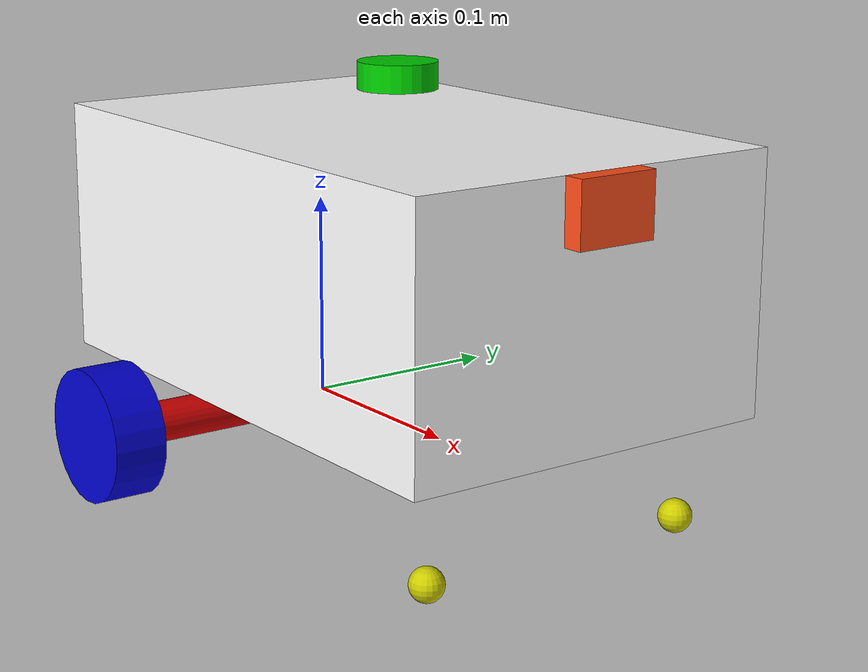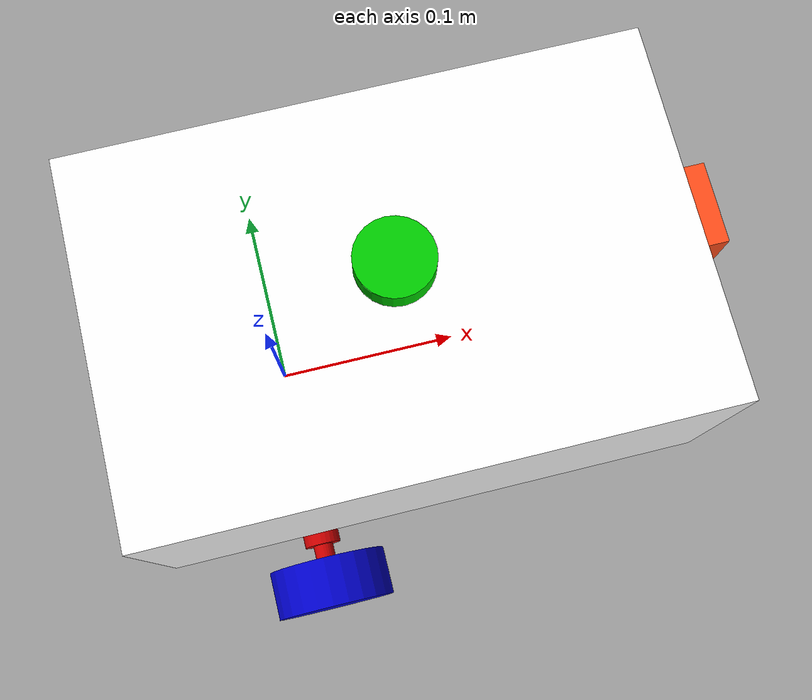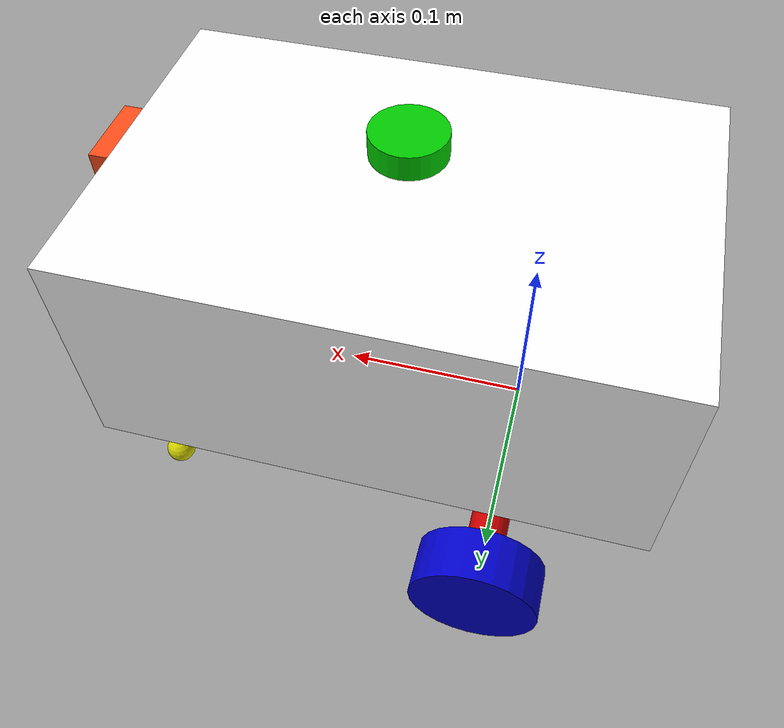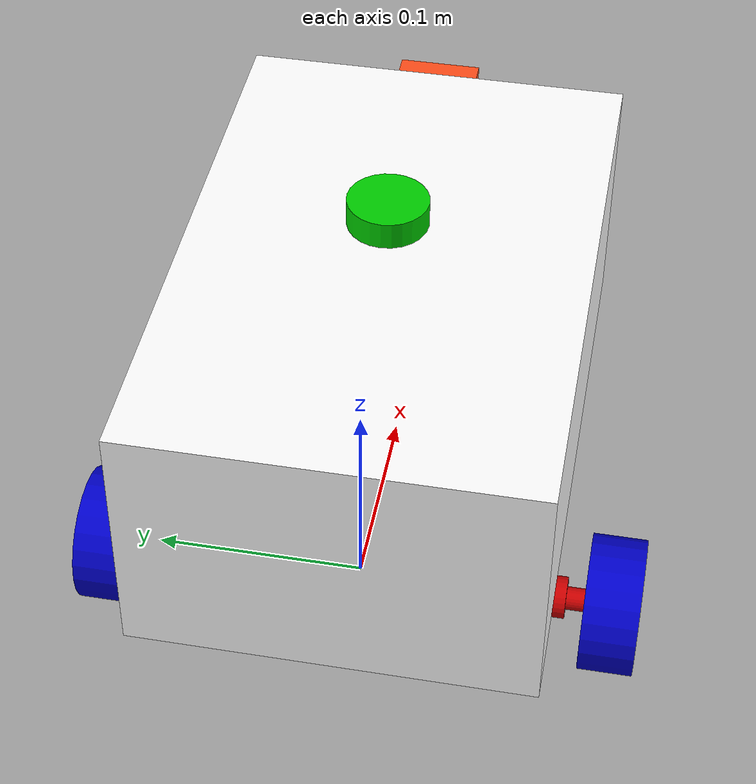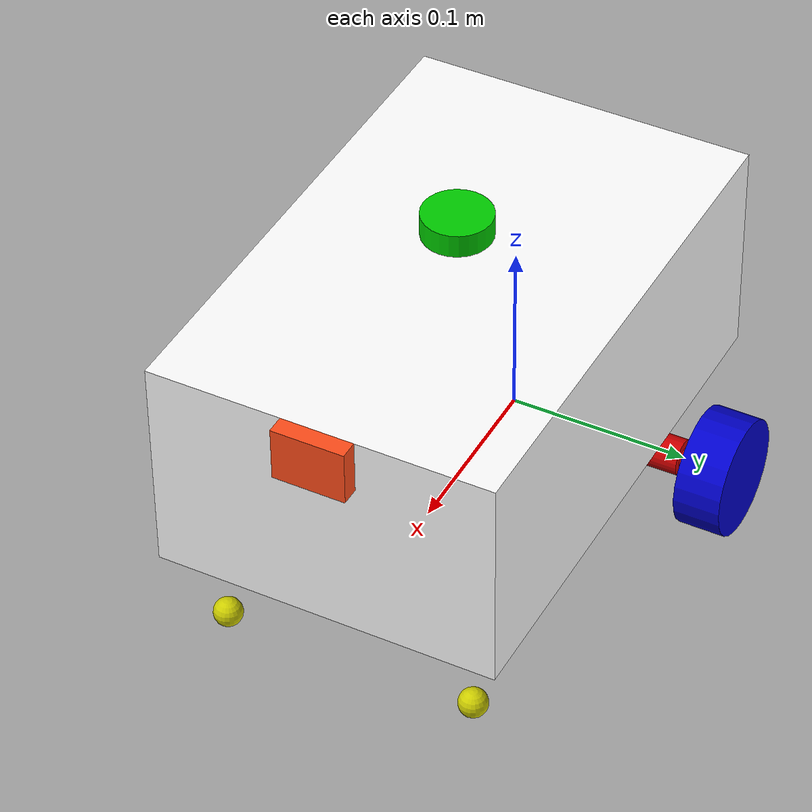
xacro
<?xml version="1.0"?>
<robot xmlns:xacro="http://www.ros.org/wiki/xacro"  name="manolobot_uno">

    <xacro:arg name="use_ros2_control" default="true" />

    <!-- PROPERTIES -->
    <xacro:include filename="properties.xacro" />

    <!-- CORE ROBOT DESCRIPTION -->
    <xacro:include filename="robot_core.xacro" />

    <!-- toggle between ROS2 CONTROL -->
    <xacro:if value ="$(arg use_ros2_control)">
        <xacro:include filename="ros2_control.xacro" />
    </xacro:if>

    <!-- and GAZEBO -->
    <xacro:unless value ="$(arg use_ros2_control)">
        <xacro:include filename="gazebo_control.xacro" />
    </xacro:unless>

    <!-- LIDAR -->
    <xacro:include filename="lidar.xacro" />

    <!-- CAMERA -->
    <xacro:include filename="camera.xacro" />

</robot>

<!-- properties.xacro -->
<robot xmlns:xacro="http://www.ros.org/wiki/xacro" >

    <!-- box -->
    <xacro:property name="box_x" value="0.29"/> <!-- box length -->
    <xacro:property name="box_y" value="0.19"/> <!-- box width -->
    <xacro:property name="box_z" value="0.124"/> <!-- box height -->
    <xacro:property name="box_mass" value="0.05"/> <!-- box mass -->

    <!-- wheels -->
    <xacro:property name="W_x" value="0.066"/> <!-- wheel axis x-offset from centre -->
    <xacro:property name="W_z" value="0.022"/> <!-- wheel axis z-offset from bottom -->
    <xacro:property name="W_y" value="0.122"/> <!-- wheel half separation -->
    <xacro:property name="W_D" value="0.065"/> <!-- wheel diameter -->
    <xacro:property name="W_h" value="0.026"/> <!-- wheel width -->
    <xacro:property name="W_mass" value="0.05"/> <!-- wheel mass -->

    <!-- casters -->
    <xacro:property name="c_x" value="0.024"/> <!-- caster centre x-offset from edge -->
    <xacro:property name="c_y" value="0.024"/> <!-- caster centre y-offset from edge -->
    <xacro:property name="c_z" value="0.049"/> <!-- caster contact z-offset from bottom -->
    <xacro:property name="c_D" value="0.016"/> <!-- caster diameter -->
    <xacro:property name="c_mass" value="0.05"/> <!-- caster mass -->

    <!-- motors -->
    <xacro:property name="m_y" value="0.04"/> <!-- motor y-offset from centre-->
    <xacro:property name="m_h" value="0.06"/> <!-- motor length -->
    <xacro:property name="m_D" value="0.02"/> <!-- motor body diameter -->
    <xacro:property name="m_l" value="0.009"/> <!-- motor coupling length -->
    <xacro:property name="m_d" value="0.011"/> <!-- motor coupling diameter -->
    <xacro:property name="m_mass" value="0.05"/> <!-- motor mass -->

    <!--lidar -->
    <xacro:property name="L_x" value="0.0"/> <!-- Lidar x-offset from box centre -->
    <xacro:property name="L_z" value="0.023"/> <!-- Lidar z-offset from box top -->
    <xacro:property name="L_D" value="0.038"/> <!-- Lidar head diameter -->
    <xacro:property name="L_h" value="0.013"/> <!-- Lidar unit height -->
    <xacro:property name="L_mass" value="0.0042"/> <!-- Lidar mass -->

    <!--camera -->
    <xacro:property name="cam_x" value="0.0"/> <!-- Camera x-offset from box front face -->
    <xacro:property name="cam_z" value="-0.03"/> <!-- Lidar z-offset from box top -->
    <xacro:property name="cam_dx" value="0.01"/> <!-- Camera box thickness -->
    <xacro:property name="cam_dy" value="0.04"/> <!-- Camera box width -->
    <xacro:property name="cam_dz" value="0.03"/> <!-- Camera box height -->
    <xacro:property name="cam_mass" value="0.002"/> <!-- Camera mass -->

</robot>

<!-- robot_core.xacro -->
<robot xmlns:xacro="http://www.ros.org/wiki/xacro" >

    <!-- MATERIALS -->
    <!-- white black light_gray dark_gray green blue red yellow orange -->

    <xacro:include filename="materials.xacro" />

    <!-- INERTIAL MACROS -->

    <xacro:include filename="inertial_macros.xacro" />

    <!-- BASE LINK -->

    <link name="base_link">
    </link>

    <!-- CHASSIS LINK -->

    <joint name="chassis_joint" type = "fixed">
        <parent link="base_link" />
        <child link="chassis_link" />
        <origin xyz="${W_x-box_x/2} 0 ${W_z}" />
    </joint>

    <link name="chassis_link">
        <visual>
            <geometry>
                <box size="${box_x} ${box_y} ${box_z}"/>
            </geometry>
            <origin xyz="${box_x/2} 0 ${box_z/2}" />
            <material name="white" />
        </visual>

        <collision>
            <geometry>
                <box size="${box_x} ${box_y} ${box_z}"/>
            </geometry>
            <origin xyz="${box_x/2} 0 ${box_z/2}" />
        </collision>

        <xacro:inertial_box mass="${box_mass}" x="${box_x}" y="${box_y}" z="${box_z}">
            <origin xyz="${box_x/2} 0 ${box_z/2}" rpy="0 0 0" />
        </xacro:inertial_box>

    </link>

    <gazebo reference="chassis_link">
        <material>Gazebo/White</material>
    </gazebo>

    <!-- LEFT WHEEL LINK -->

    <joint name="left_wheel_joint" type = "continuous">
        <parent link="base_link" />
        <child link="left_wheel_link" />
        <origin xyz="0 ${W_y} 0" rpy="-${pi/2} 0 0" />
        <axis xyz="0 0 1" />
    </joint>

    <link name="left_wheel_link">
        <visual>
            <geometry>
                <cylinder radius="${W_D/2}" length="${W_h}" />
            </geometry>
            <material name="blue" />
        </visual>

        <collision>
            <geometry>
                <sphere radius="${W_D/2}" />
            </geometry>
        </collision>

        <xacro:inertial_cylinder mass="${W_mass}" radius="${W_D/2}" length="${W_h}">
            <origin xyz="0 0 0" rpy="0 0 0" />
        </xacro:inertial_cylinder>

    </link>

    <gazebo reference="left_wheel_link">
        <material>Gazebo/Blue</material>
    </gazebo>

    <!-- RIGHT WHEEL LINK -->

    <joint name="right_wheel_joint" type = "continuous">
        <parent link="base_link" />
        <child link="right_wheel_link" />
        <origin xyz="0 -${W_y} 0" rpy="${pi/2} 0 0" />
        <axis xyz="0 0 -1" />
    </joint>

    <link name="right_wheel_link">
        <visual>
            <geometry>
                <cylinder radius="${W_D/2}" length="${W_h}" />
            </geometry>
            <material name="blue" />
        </visual>

        <collision>
            <geometry>
                <sphere radius="${W_D/2}" />
            </geometry>
        </collision>

        <xacro:inertial_cylinder mass="${W_mass}" radius="${W_D/2}" length="${W_h}">
            <origin xyz="0 0 0" rpy="0 0 0" />
        </xacro:inertial_cylinder>

    </link>

    <gazebo reference="right_wheel_link">
        <material>Gazebo/Blue</material>
    </gazebo>

<!-- LEFT CASTER WHEEL LINK -->

    <joint name="left_caster_wheel_joint" type = "fixed">
        <parent link="chassis_link" />
        <child link="left_caster_wheel_link" />
        <origin xyz="${box_x-c_x} ${box_y/2-c_y} ${-c_z}" />
    </joint>

    <link name="left_caster_wheel_link">
        <visual>
            <geometry>
                <sphere radius="${c_D/2}" />
            </geometry>
            <material name="yellow" />
        </visual>

        <collision>
            <geometry>
                <sphere radius="${c_D/2}" />
            </geometry>
        </collision>

        <xacro:inertial_sphere mass="${c_mass}" radius="${c_D/2}">
            <origin xyz="0 0 0" rpy="0 0 0" />
        </xacro:inertial_sphere>

    </link>

    <gazebo reference="left_caster_wheel_link">
        <material>Gazebo/Yellow</material>
        <mu1 value="0.0001" />
        <mu2 value="0.0001" />
    </gazebo>

<!-- RIGHT CASTER WHEEL LINK     -->

    <joint name="right_caster_wheel_joint" type = "fixed">
        <parent link="chassis_link" />
        <child link="right_caster_wheel_link" />
        <origin xyz="${box_x-c_x} ${-box_y/2+c_y} ${-c_z}" />
    </joint>

    <link name="right_caster_wheel_link">
        <visual>
            <geometry>
                <sphere radius="${c_D/2}" />
            </geometry>
            <material name="yellow" />
        </visual>

        <collision>
            <geometry>
                <sphere radius="${c_D/2}" />
            </geometry>
        </collision>

        <xacro:inertial_sphere mass="${c_mass}" radius="${c_D/2}">
            <origin xyz="0 0 0" rpy="0 0 0" />
        </xacro:inertial_sphere>

    </link>

    <gazebo reference="right_caster_wheel_link">
        <material>Gazebo/Yellow</material>
        <mu1 value="0.0001" />
        <mu2 value="0.0001" />
    </gazebo>

    <!-- LEFT MOTOR LINK -->

    <joint name="left_motor_joint" type = "fixed">
        <parent link="base_link" />
        <child link="left_motor_link" />
        <origin xyz="0 ${m_y+m_h/2} 0" rpy="-${pi/2} 0 0" />
    </joint>

    <link name="left_motor_link">
        <visual>
            <geometry>
                <cylinder radius="${m_D/2}" length="${m_h}" />
            </geometry>
            <origin xyz="0 0 0" />
            <material name="red" />
        </visual>

        <visual>
            <geometry>
                <cylinder radius="${m_d/2}" length="${m_l}" />
            </geometry>
            <origin xyz="0 0 ${(m_h+m_l)/2}" />
            <material name="red" />
        </visual>

        <collision>
            <geometry>
                <cylinder radius="${m_D/2}" length="${m_h}" />
            </geometry>
        </collision>

        <xacro:inertial_cylinder mass="${m_mass}" radius="${m_D/2}" length="${m_h}">
            <origin xyz="0 0 0" rpy="0 0 0" />
        </xacro:inertial_cylinder>

    </link>

    <gazebo reference="left_motor_link">
        <material>Gazebo/Red</material>
    </gazebo>

    <!-- RIGHT MOTOR LINK -->

    <joint name="right_motor_joint" type = "fixed">
        <parent link="base_link" />
        <child link="right_motor_link" />
        <origin xyz="0 -${m_y+m_h/2} 0" rpy="${pi/2} 0 0" />
    </joint>

    <link name="right_motor_link">
        <visual>
            <geometry>
                <cylinder radius="${m_D/2}" length="${m_h}" />
            </geometry>
            <origin xyz="0 0 0" />
            <material name="red" />
        </visual>

        <visual>
            <geometry>
                <cylinder radius="${m_d/2}" length="${m_l}" />
            </geometry>
            <origin xyz="0 0 ${(m_h+m_l)/2}" />
            <material name="red" />
        </visual>

        <collision>
            <geometry>
                <cylinder radius="${m_D/2}" length="${m_h}" />
            </geometry>
        </collision>

        <xacro:inertial_cylinder mass="${m_mass}" radius="${m_D/2}" length="${m_h}">
            <origin xyz="0 0 0" rpy="0 0 0" />
        </xacro:inertial_cylinder>

    </link>

    <gazebo reference="right_motor_link">
        <material>Gazebo/Red</material>
    </gazebo>

</robot>

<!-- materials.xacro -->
<robot xmlns:xacro="http://www.ros.org/wiki/xacro" >

    <!-- Materials -->

    <material name="white">
        <color rgba="1 1 1 1"/>
    </material>

    <material name="black">
        <color rgba="0 0 0 1"/>
    </material>

    <material name="orange">
        <color rgba="1 0.3 0.1 1"/>
    </material>

    <material name="blue">
        <color rgba="0 0 0.8 1"/>
    </material>

    <material name="green">
        <color rgba="0 0.8 0 1"/>
    </material>

    <material name="red">
        <color rgba="0.8 0 0 1"/>
    </material>

    <material name="yellow">
        <color rgba="0.8 0.8 0 1"/>
    </material>

    <material name="light_gray">
        <color rgba="0.7 0.7 0.7 1"/>
    </material>

    <material name="darkgray">
        <color rgba="0.3 0.3 0.3 1"/>
    </material>

</robot>

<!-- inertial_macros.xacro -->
<robot xmlns:xacro="http://www.ros.org/wiki/xacro" >

    <!-- Specify some standard inertial calculations https://en.wikipedia.org/wiki/List_of_moments_of_inertia -->
    <!-- These make use of xacro's mathematical functionality -->

    <xacro:macro name="inertial_sphere" params="mass radius *origin">
        <inertial>
            <xacro:insert_block name="origin"/>
            <mass value="${mass}" />
            <inertia ixx="${(2/5) * mass * (radius*radius)}" ixy="0.0" ixz="0.0"
                    iyy="${(2/5) * mass * (radius*radius)}" iyz="0.0"
                    izz="${(2/5) * mass * (radius*radius)}" />
        </inertial>
    </xacro:macro>

    <xacro:macro name="inertial_box" params="mass x y z *origin">
        <inertial>
            <xacro:insert_block name="origin"/>
            <mass value="${mass}" />
            <inertia ixx="${(1/12) * mass * (y*y+z*z)}" ixy="0.0" ixz="0.0"
                    iyy="${(1/12) * mass * (x*x+z*z)}" iyz="0.0"
                    izz="${(1/12) * mass * (x*x+y*y)}" />
        </inertial>
    </xacro:macro>

    <xacro:macro name="inertial_cylinder" params="mass radius length *origin">
        <inertial>
            <xacro:insert_block name="origin"/>
            <mass value="${mass}" />
            <inertia ixx="${(1/12) * mass * (3*radius*radius + length*length)}" ixy="0.0" ixz="0.0"
                    iyy="${(1/12) * mass * (3*radius*radius + length*length)}" iyz="0.0"
                    izz="${(1/2) * mass * (radius*radius)}" />
        </inertial>
    </xacro:macro>

</robot>

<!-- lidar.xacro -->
<robot xmlns:xacro="http://www.ros.org/wiki/xacro" >

    <joint name="lidar_joint" type="fixed">
        <parent link="chassis_link"/>
        <child link="lidar_link"/>
        <origin xyz="${box_x/2 + L_x} 0 ${box_z + L_z}" rpy="0.0 0.0 0.0"/>
    </joint>

    <link name="lidar_link">
        <visual>
            <geometry>
                <cylinder radius="${L_D/2}" length="${L_h}" />
            </geometry>
            <material name="green" />
        </visual>

        <collision>
            <geometry>
                <cylinder radius="${L_D/2}" length="${L_h}" />
            </geometry>
        </collision>

        <xacro:inertial_cylinder mass="${L_mass}" radius="${L_D/2}" length="${L_h}">
            <origin xyz="0 0 0" rpy="0 0 0" />
        </xacro:inertial_cylinder>

    </link>

    <gazebo reference="lidar_link">

        <material>Gazebo/Green</material>

        <sensor name="lidar" type="ray">
            <pose> 0 0 0 0 0 0 </pose>
            <visualize> true </visualize> <!-- visualize laser rays -->
            <update_rate>10</update_rate>
            <ray>
                <scan>
                    <horizontal>
                        <samples>360</samples>
                        <resolution>1</resolution>
                        <min_angle>-3.14</min_angle>
                        <max_angle>3.14</max_angle>
                    </horizontal>
                </scan>
                <range>
                    <min>0.3</min>
                    <max>12</max>
                    <resolution>0.01</resolution>
                </range>
            </ray>
            <plugin name="lidar_controller" filename="libgazebo_ros_ray_sensor.so">
                <ros>
                    <argument>~/out:=scan</argument> <!-- topic -->
                </ros>
                <output_type>sensor_msgs/LaserScan</output_type>
                <frame_name>lidar_link</frame_name>
            </plugin>
        </sensor>

    </gazebo>

</robot>

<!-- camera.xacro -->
<robot xmlns:xacro="http://www.ros.org/wiki/xacro" >

    <joint name="camera_joint" type="fixed">
        <parent link="chassis_link"/>
        <child link="camera_link"/>
        <origin xyz="${box_x + cam_x} 0 ${box_z + cam_z}" rpy="0.0 0.0 0.0"/>
    </joint>

    <link name="camera_link">
        <visual>
            <geometry>
                <box size="${cam_dx} ${cam_dy} ${cam_dz}"/>
            </geometry>
            <origin xyz="${cam_dx/2} 0 ${cam_dz/2}" />
            <material name="orange" />
        </visual>

        <collision>
            <geometry>
                <box size="${cam_dx} ${cam_dy} ${cam_dz}"/>
            </geometry>
            <origin xyz="${cam_dx/2} 0 ${cam_dz/2}" />
        </collision>

        <xacro:inertial_box mass="${cam_mass}" x="${cam_dx}" y="${cam_dy}" z="${cam_dz}">
            <origin xyz="${cam_dx/2} 0 ${cam_dz/2}" rpy="0 0 0" />
        </xacro:inertial_box>

    </link>

    <joint name="camera_optical_joint" type="fixed">
        <parent link="camera_link"/>
        <child link="camera_link_optical"/>
        <origin xyz="0 0 0" rpy="${-pi/2} 0 ${-pi/2}"/>
    </joint>

    <link name="camera_link_optical"></link>

    <gazebo reference="camera_link">

        <material>Gazebo/Orange</material>

        <sensor name="camera" type="camera">
            <pose> 0 0 0 0 0 0 </pose>
            <visualize> true </visualize>
            <update_rate>10</update_rate>
            <camera>
                <horizontal_fov>1.086</horizontal_fov> <!-- 62.2deg PiCamera-->
                <image>
                    <format>R8G8B8</format>
                    <width>640</width>
                    <height>480</height>
                </image>
                <clip>
                    <near>0.05</near>
                    <far>8.0</far>
                </clip>
            </camera>

            <plugin name="camera_controller" filename="libgazebo_ros_camera.so">
                <frame_name>camera_link_optical</frame_name>
            </plugin>
        </sensor>

    </gazebo>

</robot>
